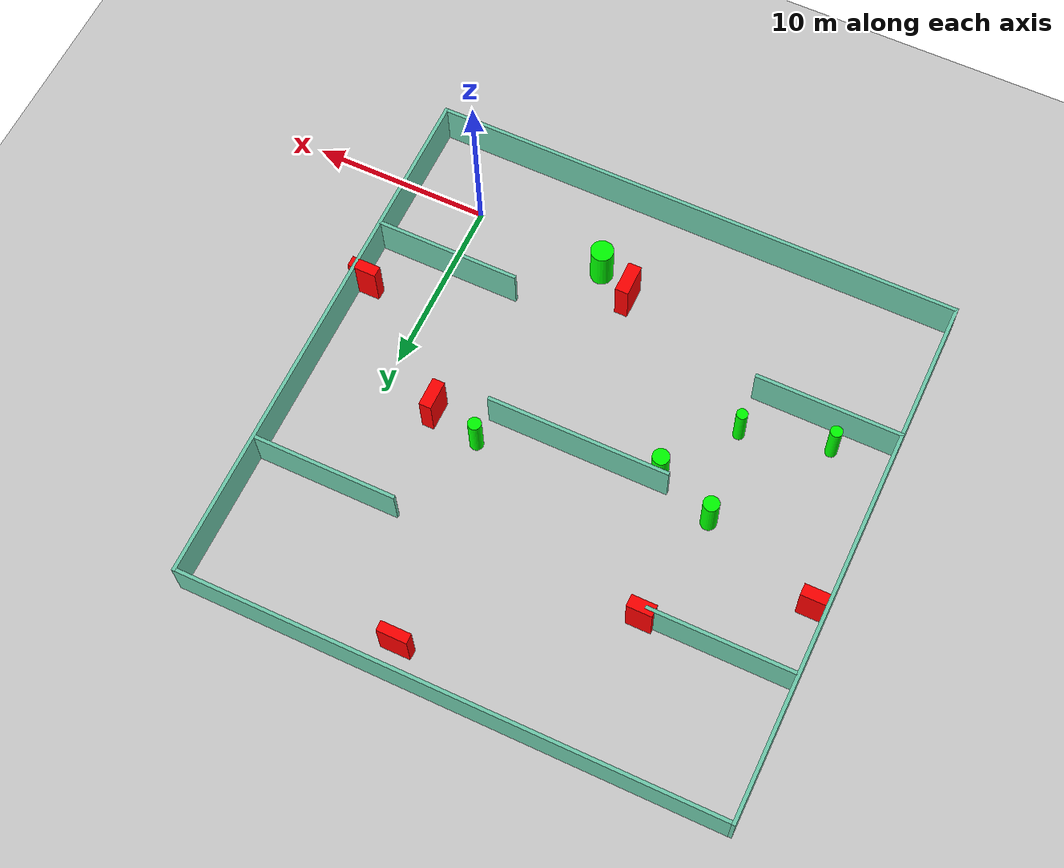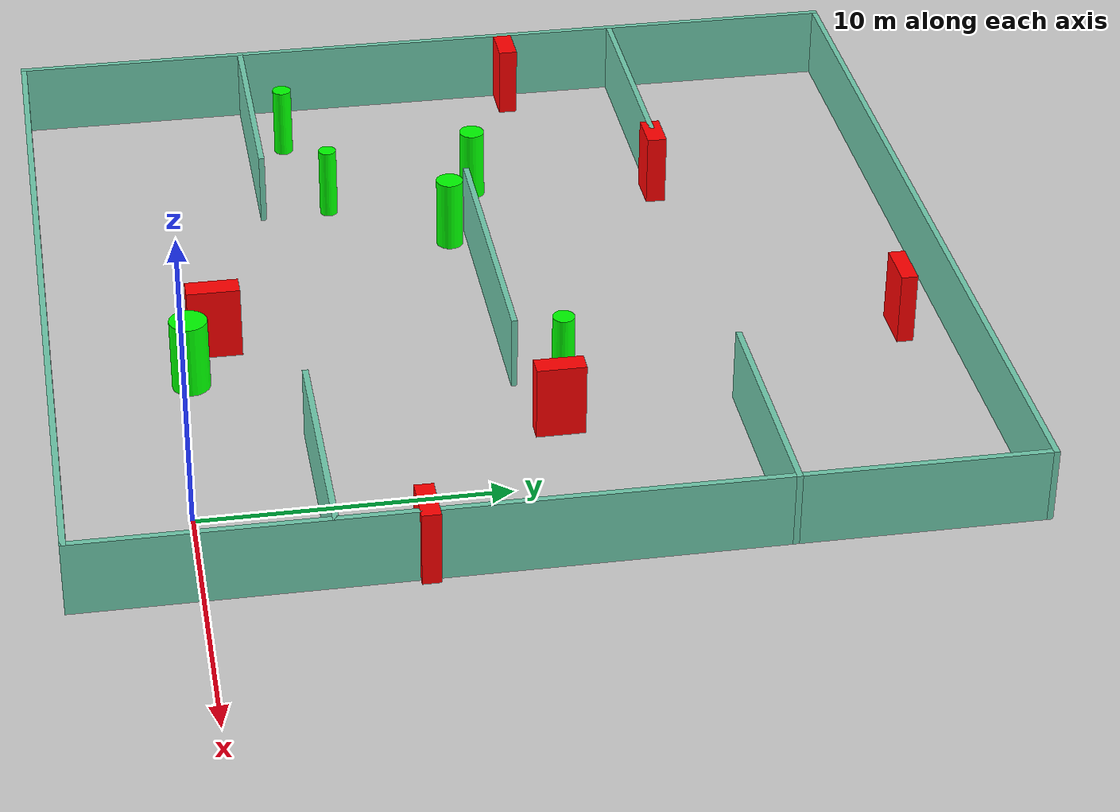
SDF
<sdf version="1.7">
 <world name="default">
  <light name="sun" type="directional">
   <pose>0 0 10 0 -0 0</pose>
   <diffuse>0.8 0.8 0.8 1</diffuse>
   <specular>0.2 0.2 0.2 1</specular>
   <attenuation>
    <range>1000</range>
    <constant>0.9</constant>
    <linear>0.01</linear>
    <quadratic>0.001</quadratic>
   </attenuation>
   <direction>-0.5 0.1 -0.9</direction>
   <spot><inner_angle>0</inner_angle><outer_angle>0</outer_angle><falloff>0</falloff></spot>
  </light>
  <model name="ground_plane">
   <static>1</static>
   <link name="link">
    <collision name="collision">
     <geometry><plane><normal>0 0 1</normal><size>100 100</size></plane></geometry>
     <surface>
      <contact><collide_bitmask>65535</collide_bitmask></contact>
      <friction><ode><mu>100</mu><mu2>50</mu2></ode></friction>
     </surface>
    </collision>
    <visual name="visual">
     <cast_shadows>0</cast_shadows>
     <geometry><plane><normal>0 0 1</normal><size>100 100</size></plane></geometry>
     <material>
      <script><uri>file://media/materials/scripts/gazebo.material</uri><name>Gazebo/Grey</name></script>
     </material>
    </visual>
   </link>
  </model>
  <gravity>0 0 -9.8</gravity>
  <magnetic_field>6e-06 2.3e-05 -4.2e-05</magnetic_field>
  <atmosphere type="adiabatic"/>
  <physics type="ode">
   <max_step_size>0.001</max_step_size>
   <real_time_factor>1</real_time_factor>
   <real_time_update_rate>1000</real_time_update_rate>
  </physics>
  <scene><ambient>0.4 0.4 0.4 1</ambient><background>0.7 0.7 0.7 1</background><shadows>1</shadows></scene>
  <spherical_coordinates>
   <surface_model>EARTH_WGS84</surface_model>
   <latitude_deg>0</latitude_deg>
   <longitude_deg>0</longitude_deg>
   <elevation>0</elevation>
   <heading_deg>0</heading_deg>
  </spherical_coordinates>
  <model name="my_base_walls">
   <link name="Wall_10">
    <collision name="Wall_10_Collision">
     <geometry><box><size>8.2 0.2 2.5</size></box></geometry>
     <pose>0 0 1.25 0 -0 0</pose>
    </collision>
    <visual name="Wall_10_Visual">
     <pose>0 0 1.25 0 -0 0</pose>
     <geometry><box><size>8.2 0.2 2.5</size></box></geometry>
     <material>
      <script><uri>file://media/materials/scripts/gazebo.material</uri><name>Gazebo/Grey</name></script>
      <ambient>0.435294 0.796078 0.67451 1</ambient>
     </material>
     <meta><layer>0</layer></meta>
    </visual>
    <pose>-11 -7 0 0 -0 0</pose>
   </link>
   <link name="Wall_12">
    <collision name="Wall_12_Collision">
     <geometry><box><size>8.2 0.2 2.5</size></box></geometry>
     <pose>0 0 1.25 0 -0 0</pose>
    </collision>
    <visual name="Wall_12_Visual">
     <pose>0 0 1.25 0 -0 0</pose>
     <geometry><box><size>8.2 0.2 2.5</size></box></geometry>
     <material>
      <script><uri>file://media/materials/scripts/gazebo.material</uri><name>Gazebo/Grey</name></script>
      <ambient>0.435294 0.796078 0.67451 1</ambient>
     </material>
     <meta><layer>0</layer></meta>
    </visual>
    <pose>-11 7 0 0 -0 0</pose>
   </link>
   <link name="Wall_14">
    <collision name="Wall_14_Collision">
     <geometry><box><size>8.2 0.2 2.5</size></box></geometry>
     <pose>0 0 1.25 0 -0 0</pose>
    </collision>
    <visual name="Wall_14_Visual">
     <pose>0 0 1.25 0 -0 0</pose>
     <geometry><box><size>8.2 0.2 2.5</size></box></geometry>
     <material>
      <script><uri>file://media/materials/scripts/gazebo.material</uri><name>Gazebo/Grey</name></script>
      <ambient>0.435294 0.796078 0.67451 1</ambient>
     </material>
     <meta><layer>0</layer></meta>
    </visual>
    <pose>11 7 0 0 -0 3.14159</pose>
   </link>
   <link name="Wall_16">
    <collision name="Wall_16_Collision">
     <geometry><box><size>10.2 0.2 2.5</size></box></geometry>
     <pose>0 0 1.25 0 -0 0</pose>
    </collision>
    <visual name="Wall_16_Visual">
     <pose>0 0 1.25 0 -0 0</pose>
     <geometry><box><size>10.2 0.2 2.5</size></box></geometry>
     <material>
      <script><uri>file://media/materials/scripts/gazebo.material</uri><name>Gazebo/Grey</name></script>
      <ambient>0.435294 0.796078 0.67451 1</ambient>
     </material>
     <meta><layer>0</layer></meta>
    </visual>
    <pose>0 0 0 0 -0 3.14159</pose>
   </link>
   <link name="Wall_2">
    <collision name="Wall_2_Collision">
     <geometry><box><size>30.2 0.2 2.5</size></box></geometry>
     <pose>0 0 1.25 0 -0 0</pose>
    </collision>
    <visual name="Wall_2_Visual">
     <pose>0 0 1.25 0 -0 0</pose>
     <geometry><box><size>30.2 0.2 2.5</size></box></geometry>
     <material>
      <script><uri>file://media/materials/scripts/gazebo.material</uri><name>Gazebo/Grey</name></script>
      <ambient>0.435294 0.796078 0.67451 1</ambient>
     </material>
     <meta><layer>0</layer></meta>
    </visual>
    <pose>0 -15 0 0 -0 3.14159</pose>
   </link>
   <link name="Wall_3">
    <collision name="Wall_3_Collision">
     <geometry><box><size>30.2 0.2 2.5</size></box></geometry>
     <pose>0 0 1.25 0 -0 0</pose>
    </collision>
    <visual name="Wall_3_Visual">
     <pose>0 0 1.25 0 -0 0</pose>
     <geometry><box><size>30.2 0.2 2.5</size></box></geometry>
     <material>
      <script><uri>file://media/materials/scripts/gazebo.material</uri><name>Gazebo/Grey</name></script>
      <ambient>0.435294 0.796078 0.67451 1</ambient>
     </material>
     <meta><layer>0</layer></meta>
    </visual>
    <pose>-15 0 0 0 -0 1.5708</pose>
   </link>
   <link name="Wall_4">
    <collision name="Wall_4_Collision">
     <geometry><box><size>30.2 0.2 2.5</size></box></geometry>
     <pose>0 0 1.25 0 -0 0</pose>
    </collision>
    <visual name="Wall_4_Visual">
     <pose>0 0 1.25 0 -0 0</pose>
     <geometry><box><size>30.2 0.2 2.5</size></box></geometry>
     <material>
      <script><uri>file://media/materials/scripts/gazebo.material</uri><name>Gazebo/Grey</name></script>
      <ambient>0.435294 0.796078 0.67451 1</ambient>
     </material>
     <meta><layer>0</layer></meta>
    </visual>
    <pose>0 15 0 0 -0 0</pose>
   </link>
   <link name="Wall_6">
    <collision name="Wall_6_Collision">
     <geometry><box><size>30.2 0.2 2.5</size></box></geometry>
     <pose>0 0 1.25 0 -0 0</pose>
    </collision>
    <visual name="Wall_6_Visual">
     <pose>0 0 1.25 0 -0 0</pose>
     <geometry><box><size>30.2 0.2 2.5</size></box></geometry>
     <material>
      <script><uri>file://media/materials/scripts/gazebo.material</uri><name>Gazebo/Grey</name></script>
      <ambient>0.435294 0.796078 0.67451 1</ambient>
     </material>
     <meta><layer>0</layer></meta>
    </visual>
    <pose>15 0 0 0 -0 1.5708</pose>
   </link>
   <link name="Wall_8">
    <collision name="Wall_8_Collision">
     <geometry><box><size>8.2 0.2 2.5</size></box></geometry>
     <pose>0 0 1.25 0 -0 0</pose>
    </collision>
    <visual name="Wall_8_Visual">
     <pose>0 0 1.25 0 -0 0</pose>
     <geometry><box><size>8.2 0.2 2.5</size></box></geometry>
     <material>
      <script><uri>file://media/materials/scripts/gazebo.material</uri><name>Gazebo/Grey</name></script>
      <ambient>0.435294 0.796078 0.67451 1</ambient>
     </material>
     <meta><layer>0</layer></meta>
    </visual>
    <pose>11 -7 0 0 -0 3.14159</pose>
   </link>
   <static>1</static>
   <pose>-11 11 0 0 -0 0</pose>
  </model>
  <model name="cylinder1">
   <static>1</static>
   <link name="link">
    <inertial>
     <mass>1</mass>
     <inertia><ixx>0.5</ixx><ixy>0</ixy><ixz>0</ixz><iyy>0.5</iyy><iyz>0</iyz><izz>1</izz></inertia>
    </inertial>
    <collision name="collision">
     <geometry><cylinder><radius>0.4409252669882835</radius><length>2.5</length></cylinder></geometry>
    </collision>
    <visual name="visual">
     <geometry><cylinder><radius>0.4409252669882835</radius><length>2.5</length></cylinder></geometry>
     <material>
      <ambient>0 1 0 1</ambient>
      <diffuse>0 1 0 1</diffuse>
      <specular>0.1 0.1 0.1 1</specular>
      <emissive>0 0 0 0</emissive>
     </material>
    </visual>
   </link>
   <pose>-18.67621799277282 11.604631929122082 1.25 0 0 0</pose>
  </model>
  <model name="cylinder2">
   <static>1</static>
   <link name="link">
    <inertial>
     <mass>1</mass>
     <inertia><ixx>0.5</ixx><ixy>0</ixy><ixz>0</ixz><iyy>0.5</iyy><iyz>0</iyz><izz>1</izz></inertia>
    </inertial>
    <collision name="collision">
     <geometry><cylinder><radius>0.6329005677881693</radius><length>2.5</length></cylinder></geometry>
    </collision>
    <visual name="visual">
     <geometry><cylinder><radius>0.6329005677881693</radius><length>2.5</length></cylinder></geometry>
     <material>
      <ambient>0 1 0 1</ambient>
      <diffuse>0 1 0 1</diffuse>
      <specular>0.1 0.1 0.1 1</specular>
      <emissive>0 0 0 0</emissive>
     </material>
    </visual>
   </link>
   <pose>-7.602212573267371 0.5865932166273327 1.25 0 0 0</pose>
  </model>
  <model name="cylinder3">
   <static>1</static>
   <link name="link">
    <inertial>
     <mass>1</mass>
     <inertia><ixx>0.5</ixx><ixy>0</ixy><ixz>0</ixz><iyy>0.5</iyy><iyz>0</iyz><izz>1</izz></inertia>
    </inertial>
    <collision name="collision">
     <geometry><cylinder><radius>0.30986443577117356</radius><length>2.5</length></cylinder></geometry>
    </collision>
    <visual name="visual">
     <geometry><cylinder><radius>0.30986443577117356</radius><length>2.5</length></cylinder></geometry>
     <material>
      <ambient>0 1 0 1</ambient>
      <diffuse>0 1 0 1</diffuse>
      <specular>0.1 0.1 0.1 1</specular>
      <emissive>0 0 0 0</emissive>
     </material>
    </visual>
   </link>
   <pose>-18.13430332192831 6.351091918412644 1.25 0 0 0</pose>
  </model>
  <model name="cylinder4">
   <static>1</static>
   <link name="link">
    <inertial>
     <mass>1</mass>
     <inertia><ixx>0.5</ixx><ixy>0</ixy><ixz>0</ixz><iyy>0.5</iyy><iyz>0</iyz><izz>1</izz></inertia>
    </inertial>
    <collision name="collision">
     <geometry><cylinder><radius>0.371699815186191</radius><length>2.5</length></cylinder></geometry>
    </collision>
    <visual name="visual">
     <geometry><cylinder><radius>0.371699815186191</radius><length>2.5</length></cylinder></geometry>
     <material>
      <ambient>0 1 0 1</ambient>
      <diffuse>0 1 0 1</diffuse>
      <specular>0.1 0.1 0.1 1</specular>
      <emissive>0 0 0 0</emissive>
     </material>
    </visual>
   </link>
   <pose>-5.931984947339945 12.628239309011573 1.25 0 0 0</pose>
  </model>
  <model name="cylinder5">
   <static>1</static>
   <link name="link">
    <inertial>
     <mass>1</mass>
     <inertia><ixx>0.5</ixx><ixy>0</ixy><ixz>0</ixz><iyy>0.5</iyy><iyz>0</iyz><izz>1</izz></inertia>
    </inertial>
    <collision name="collision">
     <geometry><cylinder><radius>0.4674839203893374</radius><length>2.5</length></cylinder></geometry>
    </collision>
    <visual name="visual">
     <geometry><cylinder><radius>0.4674839203893374</radius><length>2.5</length></cylinder></geometry>
     <material>
      <ambient>0 1 0 1</ambient>
      <diffuse>0 1 0 1</diffuse>
      <specular>0.1 0.1 0.1 1</specular>
      <emissive>0 0 0 0</emissive>
     </material>
    </visual>
   </link>
   <pose>-15.336777402175843 10.303491779011923 1.25 0 0 0</pose>
  </model>
  <model name="cylinder6">
   <static>1</static>
   <link name="link">
    <inertial>
     <mass>1</mass>
     <inertia><ixx>0.5</ixx><ixy>0</ixy><ixz>0</ixz><iyy>0.5</iyy><iyz>0</iyz><izz>1</izz></inertia>
    </inertial>
    <collision name="collision">
     <geometry><cylinder><radius>0.33117934758246426</radius><length>2.5</length></cylinder></geometry>
    </collision>
    <visual name="visual">
     <geometry><cylinder><radius>0.33117934758246426</radius><length>2.5</length></cylinder></geometry>
     <material>
      <ambient>0 1 0 1</ambient>
      <diffuse>0 1 0 1</diffuse>
      <specular>0.1 0.1 0.1 1</specular>
      <emissive>0 0 0 0</emissive>
     </material>
    </visual>
   </link>
   <pose>-22.888989998851937 5.234131724288968 1.25 0 0 0</pose>
  </model>
  <model name="box1">
   <static>1</static>
   <link name="link">
    <inertial>
     <mass>1</mass>
     <inertia><ixx>0.083</ixx><ixy>0</ixy><ixz>0</ixz><iyy>0.083</iyy><iyz>0</iyz><izz>0.083</izz></inertia>
    </inertial>
    <collision name="collision">
     <geometry><box><size>1.5765460886148894 0.653101268996303 2.5</size></box></geometry>
    </collision>
    <visual name="visual">
     <geometry><box><size>1.5765460886148894 0.653101268996303 2.5</size></box></geometry>
     <material>
      <ambient>1 0 0 1</ambient>
      <diffuse>1 0 0 1</diffuse>
      <specular>0.1 0.1 0.1 1</specular>
      <emissive>0 0 0 0</emissive>
     </material>
    </visual>
    <sensor name="my_contact" type="contact">
     <contact><collision>box_collision</collision><topic>__default_topic__</topic></contact>
    </sensor>
   </link>
   <pose>-25.309410450087693 13.89749429059945 1.25 0 0 0</pose>
  </model>
  <model name="box2">
   <static>1</static>
   <link name="link">
    <inertial>
     <mass>1</mass>
     <inertia><ixx>0.083</ixx><ixy>0</ixy><ixz>0</ixz><iyy>0.083</iyy><iyz>0</iyz><izz>0.083</izz></inertia>
    </inertial>
    <collision name="collision">
     <geometry><box><size>0.683523964367166 1.6190920220471725 2.5</size></box></geometry>
    </collision>
    <visual name="visual">
     <geometry><box><size>0.683523964367166 1.6190920220471725 2.5</size></box></geometry>
     <material>
      <ambient>1 0 0 1</ambient>
      <diffuse>1 0 0 1</diffuse>
      <specular>0.1 0.1 0.1 1</specular>
      <emissive>0 0 0 0</emissive>
     </material>
    </visual>
    <sensor name="my_contact" type="contact">
     <contact><collision>box_collision</collision><topic>__default_topic__</topic></contact>
    </sensor>
   </link>
   <pose>-3.1748650115261405 12.007350937979552 1.25 0 0 0</pose>
  </model>
  <model name="box3">
   <static>1</static>
   <link name="link">
    <inertial>
     <mass>1</mass>
     <inertia><ixx>0.083</ixx><ixy>0</ixy><ixz>0</ixz><iyy>0.083</iyy><iyz>0</iyz><izz>0.083</izz></inertia>
    </inertial>
    <collision name="collision">
     <geometry><box><size>1.4039010985275087 0.6798274741898154 2.5</size></box></geometry>
    </collision>
    <visual name="visual">
     <geometry><box><size>1.4039010985275087 0.6798274741898154 2.5</size></box></geometry>
     <material>
      <ambient>1 0 0 1</ambient>
      <diffuse>1 0 0 1</diffuse>
      <specular>0.1 0.1 0.1 1</specular>
      <emissive>0 0 0 0</emissive>
     </material>
    </visual>
    <sensor name="my_contact" type="contact">
     <contact><collision>box_collision</collision><topic>__default_topic__</topic></contact>
    </sensor>
   </link>
   <pose>-17.722412956007314 18.02085272013758 1.25 0 0 0</pose>
  </model>
  <model name="box4">
   <static>1</static>
   <link name="link">
    <inertial>
     <mass>1</mass>
     <inertia><ixx>0.083</ixx><ixy>0</ixy><ixz>0</ixz><iyy>0.083</iyy><iyz>0</iyz><izz>0.083</izz></inertia>
    </inertial>
    <collision name="collision">
     <geometry><box><size>1.6773558766952492 0.5601909603899451 2.5</size></box></geometry>
    </collision>
    <visual name="visual">
     <geometry><box><size>1.6773558766952492 0.5601909603899451 2.5</size></box></geometry>
     <material>
      <ambient>1 0 0 1</ambient>
      <diffuse>1 0 0 1</diffuse>
      <specular>0.1 0.1 0.1 1</specular>
      <emissive>0 0 0 0</emissive>
     </material>
    </visual>
    <sensor name="my_contact" type="contact">
     <contact><collision>box_collision</collision><topic>__default_topic__</topic></contact>
    </sensor>
   </link>
   <pose>-7.330193146655766 24.350669184531075 1.25 0 0 0</pose>
  </model>
  <model name="box5">
   <static>1</static>
   <link name="link">
    <inertial>
     <mass>1</mass>
     <inertia><ixx>0.083</ixx><ixy>0</ixy><ixz>0</ixz><iyy>0.083</iyy><iyz>0</iyz><izz>0.083</izz></inertia>
    </inertial>
    <collision name="collision">
     <geometry><box><size>0.7446670759532272 1.7741630556438714 2.5</size></box></geometry>
    </collision>
    <visual name="visual">
     <geometry><box><size>0.7446670759532272 1.7741630556438714 2.5</size></box></geometry>
     <material>
      <ambient>1 0 0 1</ambient>
      <diffuse>1 0 0 1</diffuse>
      <specular>0.1 0.1 0.1 1</specular>
      <emissive>0 0 0 0</emissive>
     </material>
    </visual>
    <sensor name="my_contact" type="contact">
     <contact><collision>box_collision</collision><topic>__default_topic__</topic></contact>
    </sensor>
   </link>
   <pose>-9.563638582803797 1.5379820852502828 1.25 0 0 0</pose>
  </model>
  <model name="box6">
   <static>1</static>
   <link name="link">
    <inertial>
     <mass>1</mass>
     <inertia><ixx>0.083</ixx><ixy>0</ixy><ixz>0</ixz><iyy>0.083</iyy><iyz>0</iyz><izz>0.083</izz></inertia>
    </inertial>
    <collision name="collision">
     <geometry><box><size>1.618997476737604 0.612292431078437 2.5</size></box></geometry>
    </collision>
    <visual name="visual">
     <geometry><box><size>1.618997476737604 0.612292431078437 2.5</size></box></geometry>
     <material>
      <ambient>1 0 0 1</ambient>
      <diffuse>1 0 0 1</diffuse>
      <specular>0.1 0.1 0.1 1</specular>
      <emissive>0 0 0 0</emissive>
     </material>
    </visual>
    <sensor name="my_contact" type="contact">
     <contact><collision>box_collision</collision><topic>__default_topic__</topic></contact>
    </sensor>
   </link>
   <pose>3.5047285068316825 6.800874083034818 1.25 0 0 0</pose>
  </model>
 </world>
</sdf>
